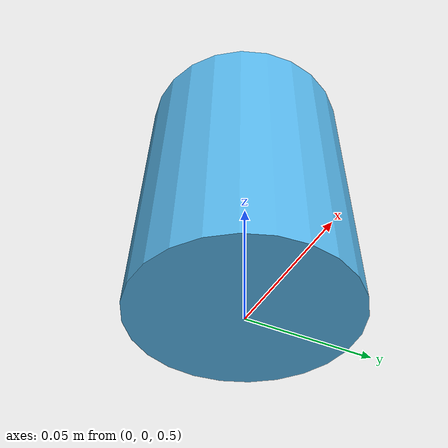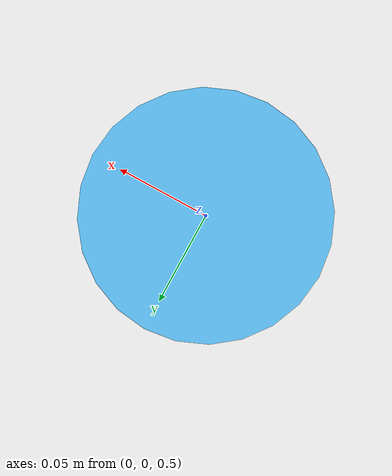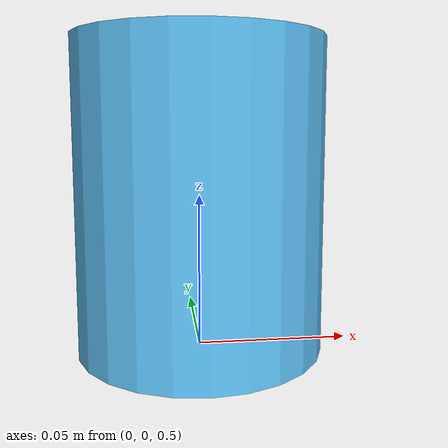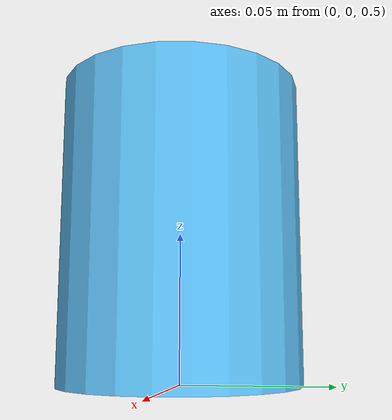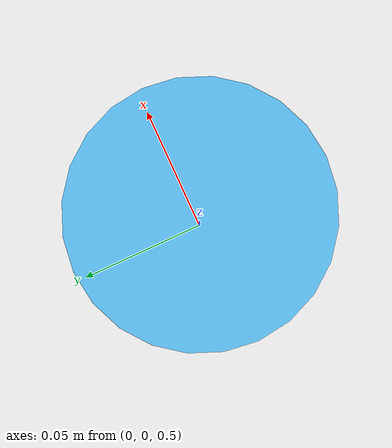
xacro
<?xml version="1.0"?>
<robot xmlns:xacro="http://www.ros.org/wiki/xacro">
  <!-- Global constants and world link -->
  <xacro:include filename="$(find simulation)/description/urdf/common.urdf.xacro" />

  <!-- Mass of the cup. -->
  <xacro:property name="MASS" value="0.2"/>

  <!-- Radius of the cup. -->
  <xacro:property name="RADIUS" value="0.04"/>

  <!-- Height of the cup. -->
  <xacro:property name="HEIGHT" value="0.1"/>

  <!-- Macro for cylinders. -->
  <xacro:include filename="$(find simulation)/description/urdf/objects/cylinder.urdf.xacro"/>

  <xacro:obj_cylinder name="cup" mass="${MASS}" radius="${RADIUS}" length="${HEIGHT}">
    <!-- We want to reference the cup from its bottom center. -->
    <origin xyz="0 0 ${HEIGHT / 2.0}" rpy="0 0 0"/>
  </xacro:obj_cylinder>
  <joint name="${WORLD}_to_cup_joint" type="floating">
    <parent link="${WORLD}" />
    <child link="cup_link" />
    <origin xyz="0 0 0.5" rpy="0 0 0"/>
  </joint>
</robot>

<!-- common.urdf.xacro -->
<robot name="cup_picker_constants" xmlns:xacro="http://ros.org/wiki/xacro">
  <!-- PI the circle number. -->
  <xacro:property name="M_PI" value="3.1415926535897931"/>

  <!-- Prefix identifying the cup picker robot. -->
  <xacro:property name="CUP_PICKER" value=""/>

  <!-- Prefix identifying the turtlebot robot. -->
  <xacro:property name="TURTLEBOT" value=""/>

  <!-- Name of the link representing the world of the robot. -->
  <xacro:property name="WORLD" value="world"/>

  <!-- The world link (can be replaced by another link if needed). -->
  <link name="world" />

  <!-- Width of the lab table. -->
  <xacro:property name="LAB_TABLE_WIDTH" value="${0.61 + 0.07}"/>

  <!-- Height of the lab table. -->
  <xacro:property name="LAB_TABLE_HEIGHT" value="0.96"/>

  <!-- Depth of the lab table. -->
  <xacro:property name="LAB_TABLE_DEPTH" value="0.41"/>
</robot>

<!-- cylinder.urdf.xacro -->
<robot xmlns:xacro="http://ros.org/wiki/xacro" name="cylinder">
  <xacro:macro name="obj_cylinder" params="name mass radius length *origin">
    <link name="${name}_link">
      <visual>
	<geometry>
	  <cylinder radius="${radius}" length="${length}"/>
	</geometry>
	<xacro:insert_block name="origin"/>
      </visual>
      <collision>
	<geometry>
	  <cylinder radius="${radius}" length="${length}"/>
	</geometry>
	<xacro:insert_block name="origin"/>
      </collision>
      <inertial>
	<xacro:insert_block name="origin"/>
	<mass value="${mass}"/>
	<inertia
	  ixx="${mass/12.0*(3.0*radius*radius+length*length)}" ixy="0.0" ixz="0.0"
	  iyy="${mass/12.0*(3.0*radius*radius+length*length)}" iyz="0.0"
	  izz="${mass/2.0*radius*radius}"/>
      </inertial>
    </link>#
    <gazebo reference="${name}_link">
      <selfCollide>true</selfCollide>
    </gazebo>
  </xacro:macro>
</robot>
